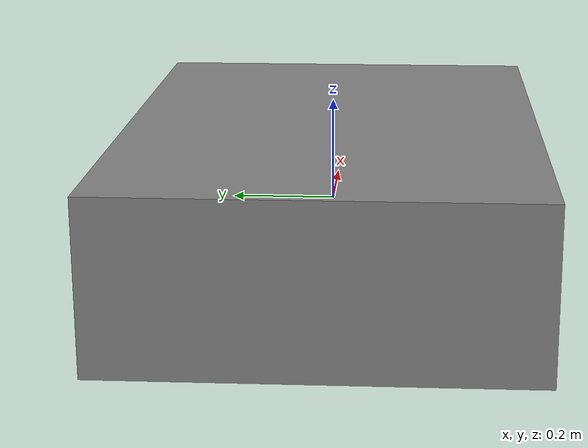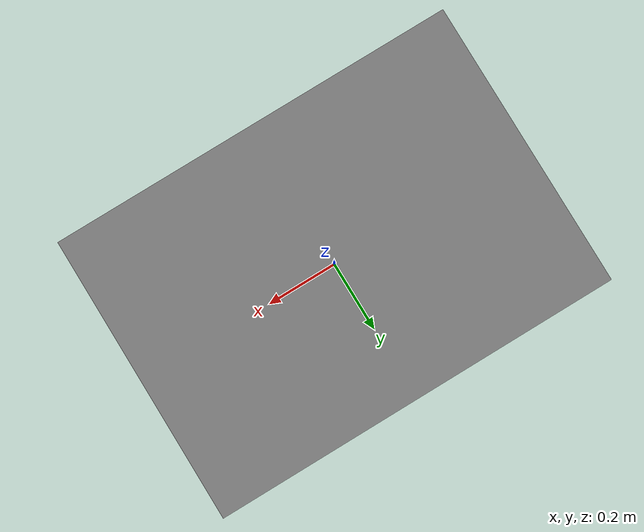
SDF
<?xml version="1.0" ?>
<sdf version="1.5">
  <model name="ammr">
    <pose>0 0 0 0 0 0</pose>

    <!-- base_footprint (작은 바닥판) -->
    <link name="base_footprint">
    </link>

    <!-- base_link (로봇 차체, 박스: 1.128×0.798×0.320, mass 20kg) -->
    <link name="base_link">
      <visual name="base_link_visual">
        <geometry>
          <box>
            <size>1.128 0.798 0.320</size>
          </box>
        </geometry>
        <material>
          <ambient>0.5 0.5 0.5 1</ambient>
          <diffuse>0.5 0.5 0.5 1</diffuse>
        </material>
      </visual>
      <collision name="base_link_collision">
        <geometry>
          <box>
            <size>1.128 0.798 0.320</size>
          </box>
        </geometry>
      </collision>
      <inertial>
        <mass>20.0</mass>
        <pose>0 0 0 0 0 0</pose>
        <inertia>
          <ixx>1.23</ixx>
          <iyy>2.29</iyy>
          <izz>3.18</izz>
          <ixy>0</ixy>
          <ixz>0</ixz>
          <iyz>0</iyz>
        </inertia>
      </inertial>
    </link>
    <joint name="base_footprint_to_base_link" type="fixed">
      <parent>base_footprint</parent>
      <child>base_link</child>
      <!-- Z 오프셋 0.09 -->
      <pose>0 0 0.09 0 0 0</pose>
    </joint>

    <!-- 라이다 1: scan_front -->
    <link name="scan_front">
      <visual name="scan_front_visual">
        <geometry>
          <cylinder>
            <radius>0.05</radius>
            <length>0.1</length>
          </cylinder>
        </geometry>
        <material>
          <ambient>1 0 0 1</ambient>
          <diffuse>1 0 0 1</diffuse>
        </material>
      </visual>
      <collision name="scan_front_collision">
        <geometry>
          <cylinder>
            <radius>0.05</radius>
            <length>0.1</length>
          </cylinder>
        </geometry>
      </collision>
      <inertial>
        <mass>1.0</mass>
        <pose>0 0 0 0 0 0</pose>
        <inertia>
          <ixx>0.00146</ixx>
          <iyy>0.00146</iyy>
          <izz>0.00125</izz>
          <ixy>0</ixy>
          <ixz>0</ixz>
          <iyz>0</iyz>
        </inertia>
      </inertial>
      <sensor name="picoScan150Core-1" type="ray">
        <pose>0 0 0 0 0 0</pose>
        <update_rate>20</update_rate>
        <ray>
          <scan>
            <horizontal>
              <samples>360</samples>
              <resolution>1</resolution>
              <min_angle>-1.5708</min_angle>
              <max_angle>1.5708</max_angle>
            </horizontal>
          </scan>
          <range>
            <min>0.1</min>
            <max>30</max>
            <resolution>0.01</resolution>
          </range>
          <noise>
            <type>gaussian</type>
            <mean>0.0</mean>
            <stddev>0.01</stddev>
          </noise>
        </ray>
      </sensor>
    </link>
    <!-- 수정된 scan_front 위치: base_link의 앞쪽 표면으로 돌출 -->
    <joint name="base_link_to_scan_front" type="fixed">
      <parent>base_link</parent>
      <child>scan_front</child>
      <pose>0.7 -0.315 0.216 3.14159 0 -0.7854</pose>
    </joint>

    <!-- 라이다 2: scan_rear -->
    <link name="scan_rear">
      <visual name="scan_rear_visual">
        <geometry>
          <cylinder>
            <radius>0.05</radius>
            <length>0.1</length>
          </cylinder>
        </geometry>
        <material>
          <ambient>1 0 0 1</ambient>
          <diffuse>1 0 0 1</diffuse>
        </material>
      </visual>
      <collision name="scan_rear_collision">
        <geometry>
          <cylinder>
            <radius>0.05</radius>
            <length>0.1</length>
          </cylinder>
        </geometry>
      </collision>
      <inertial>
        <mass>1.0</mass>
        <pose>0 0 0 0 0 0</pose>
        <inertia>
          <ixx>0.00146</ixx>
          <iyy>0.00146</iyy>
          <izz>0.00125</izz>
          <ixy>0</ixy>
          <ixz>0</ixz>
          <iyz>0</iyz>
        </inertia>
      </inertial>
      <sensor name="picoScan150Core-1" type="ray">
        <pose>0 0 0 0 0 0</pose>
        <update_rate>20</update_rate>
        <ray>
          <scan>
            <horizontal>
              <samples>360</samples>
              <resolution>1</resolution>
              <min_angle>-1.5708</min_angle>
              <max_angle>1.5708</max_angle>
            </horizontal>
          </scan>
          <range>
            <min>0.1</min>
            <max>30</max>
            <resolution>0.01</resolution>
          </range>
          <noise>
            <type>gaussian</type>
            <mean>0.0</mean>
            <stddev>0.01</stddev>
          </noise>
        </ray>
      </sensor>
    </link>
    <!-- 수정된 scan_rear 위치: base_link의 뒷쪽 표면으로 돌출 -->
    <joint name="base_link_to_scan_rear" type="fixed">
      <parent>base_link</parent>
      <child>scan_rear</child>
      <pose>-0.7 0.315 0.216 3.14159 0 2.35619</pose>
    </joint>

    <!-- 카메라 Front: camera_front -->
    <link name="camera_front">
      <visual name="camera_front_visual">
        <geometry>
          <box>
            <size>0.1 0.1 0.1</size>
          </box>
        </geometry>
        <material>
          <ambient>0 1 0 1</ambient>
          <diffuse>0 1 0 1</diffuse>
        </material>
      </visual>
      <collision name="camera_front_collision">
        <geometry>
          <box>
            <size>0.1 0.1 0.1</size>
          </box>
        </geometry>
      </collision>
      <inertial>
        <mass>0.5</mass>
        <pose>0 0 0 0 0 0</pose>
        <inertia>
          <ixx>0.00083</ixx>
          <iyy>0.00083</iyy>
          <izz>0.00083</izz>
          <ixy>0</ixy>
          <ixz>0</ixz>
          <iyz>0</iyz>
        </inertia>
      </inertial>
      <sensor name="zed_x_mini" type="camera">
        <pose>0 0 0 0 0 0</pose>
        <update_rate>30</update_rate>
        <camera>
          <horizontal_fov>1.047</horizontal_fov>
          <image>
            <width>1280</width>
            <height>720</height>
            <format>R8G8B8</format>
          </image>
          <clip>
            <near>0.1</near>
            <far>100</far>
          </clip>
        </camera>
      </sensor>
    </link>
    <!-- 수정된 camera_front 위치: base_link의 앞쪽 -->
    <joint name="base_link_to_camera_front" type="fixed">
      <parent>base_link</parent>
      <child>camera_front</child>
      <pose>0.7 0 0.277 0 0 0</pose>
    </joint>

    <!-- 카메라 Rear: camera_rear -->
    <link name="camera_rear">
      <visual name="camera_rear_visual">
        <geometry>
          <box>
            <size>0.1 0.1 0.1</size>
          </box>
        </geometry>
        <material>
          <ambient>0 1 0 1</ambient>
          <diffuse>0 1 0 1</diffuse>
        </material>
      </visual>
      <collision name="camera_rear_collision">
        <geometry>
          <box>
            <size>0.1 0.1 0.1</size>
          </box>
        </geometry>
      </collision>
      <inertial>
        <mass>0.5</mass>
        <pose>0 0 0 0 0 0</pose>
        <inertia>
          <ixx>0.00083</ixx>
          <iyy>0.00083</iyy>
          <izz>0.00083</izz>
          <ixy>0</ixy>
          <ixz>0</ixz>
          <iyz>0</iyz>
        </inertia>
      </inertial>
      <sensor name="zed_x_mini" type="camera">
        <pose>0 0 0 0 0 0</pose>
        <update_rate>30</update_rate>
        <camera>
          <horizontal_fov>1.047</horizontal_fov>
          <image>
            <width>1280</width>
            <height>720</height>
            <format>R8G8B8</format>
          </image>
          <clip>
            <near>0.1</near>
            <far>100</far>
          </clip>
        </camera>
      </sensor>
    </link>
    <!-- 수정된 camera_rear 위치: base_link의 뒷쪽 -->
    <joint name="base_link_to_camera_rear" type="fixed">
      <parent>base_link</parent>
      <child>camera_rear</child>
      <pose>-0.7 0 0.277 0 0 3.14159</pose>
    </joint>

    <!-- 카메라 Right: camera_right -->
    <link name="camera_right">
      <visual name="camera_right_visual">
        <geometry>
          <box>
            <size>0.1 0.1 0.1</size>
          </box>
        </geometry>
        <material>
          <ambient>0 1 0 1</ambient>
          <diffuse>0 1 0 1</diffuse>
        </material>
      </visual>
      <collision name="camera_right_collision">
        <geometry>
          <box>
            <size>0.1 0.1 0.1</size>
          </box>
        </geometry>
      </collision>
      <inertial>
        <mass>0.5</mass>
        <pose>0 0 0 0 0 0</pose>
        <inertia>
          <ixx>0.00083</ixx>
          <iyy>0.00083</iyy>
          <izz>0.00083</izz>
          <ixy>0</ixy>
          <ixz>0</ixz>
          <iyz>0</iyz>
        </inertia>
      </inertial>
      <sensor name="zed_x_mini" type="camera">
        <pose>0 0 0 0 0 0</pose>
        <update_rate>30</update_rate>
        <camera>
          <horizontal_fov>1.047</horizontal_fov>
          <image>
            <width>1280</width>
            <height>720</height>
            <format>R8G8B8</format>
          </image>
          <clip>
            <near>0.1</near>
            <far>100</far>
          </clip>
        </camera>
      </sensor>
    </link>
    <!-- 수정된 camera_right 위치: base_link의 오른쪽 -->
    <joint name="base_link_to_camera_right" type="fixed">
      <parent>base_link</parent>
      <child>camera_right</child>
      <pose>0 -0.5 0.277 0 0 -1.5708</pose>
    </joint>

    <!-- 카메라 Left: camera_left -->
    <link name="camera_left">
      <visual name="camera_left_visual">
        <geometry>
          <box>
            <size>0.1 0.1 0.1</size>
          </box>
        </geometry>
        <material>
          <ambient>0 1 0 1</ambient>
          <diffuse>0 1 0 1</diffuse>
        </material>
      </visual>
      <collision name="camera_left_collision">
        <geometry>
          <box>
            <size>0.1 0.1 0.1</size>
          </box>
        </geometry>
      </collision>
      <inertial>
        <mass>0.5</mass>
        <pose>0 0 0 0 0 0</pose>
        <inertia>
          <ixx>0.00083</ixx>
          <iyy>0.00083</iyy>
          <izz>0.00083</izz>
          <ixy>0</ixy>
          <ixz>0</ixz>
          <iyz>0</iyz>
        </inertia>
      </inertial>
      <sensor name="zed_x_mini" type="camera">
        <pose>0 0 0 0 0 0</pose>
        <update_rate>30</update_rate>
        <camera>
          <horizontal_fov>1.047</horizontal_fov>
          <image>
            <width>1280</width>
            <height>720</height>
            <format>R8G8B8</format>
          </image>
          <clip>
            <near>0.1</near>
            <far>100</far>
          </clip>
        </camera>
      </sensor>
    </link>
    <!-- 수정된 camera_left 위치: base_link의 왼쪽 -->
    <joint name="base_link_to_camera_left" type="fixed">
      <parent>base_link</parent>
      <child>camera_left</child>
      <pose>0 0.5 0.277 0 0 1.5708</pose>
    </joint>

    <!-- 휠 1: wheel_left (원통: radius 0.09, length 0.05, mass 1kg) -->
    <link name="wheel_left">
      <visual name="wheel_left_visual">
        <geometry>
          <cylinder>
            <radius>0.09</radius>
            <length>0.05</length>
          </cylinder>
        </geometry>
        <material>
          <ambient>0 0 0 1</ambient>
          <diffuse>0 0 0 1</diffuse>
        </material>
      </visual>
      <collision name="wheel_left_collision">
        <geometry>
          <cylinder>
            <radius>0.09</radius>
            <length>0.05</length>
          </cylinder>
        </geometry>
      </collision>
      <inertial>
        <mass>1.0</mass>
        <pose>0 0 0 0 0 0</pose>
        <inertia>
          <ixx>0.00223</ixx>
          <iyy>0.00223</iyy>
          <izz>0.00405</izz>
          <ixy>0</ixy>
          <ixz>0</ixz>
          <iyz>0</iyz>
        </inertia>
      </inertial>
    </link>
    <!-- 수정된 wheel_left 위치: base_link의 측면, 아래쪽 (z = -0.2) -->
    <joint name="base_link_to_wheel_left" type="revolute">
      <parent>base_link</parent>
      <child>wheel_left</child>
      <pose>0 0.33 -0.2 -1.57 0 0</pose>
      <axis>
        <xyz>0 0 1</xyz>
        <limit>
          <lower>-3.14159</lower>
          <upper>3.14159</upper>
        </limit>
      </axis>
    </joint>

    <!-- 휠 2: wheel_right (원통: radius 0.09, length 0.05, mass 1kg) -->
    <link name="wheel_right">
      <visual name="wheel_right_visual">
        <geometry>
          <cylinder>
            <radius>0.09</radius>
            <length>0.05</length>
          </cylinder>
        </geometry>
        <material>
          <ambient>0 0 0 1</ambient>
          <diffuse>0 0 0 1</diffuse>
        </material>
      </visual>
      <collision name="wheel_right_collision">
        <geometry>
          <cylinder>
            <radius>0.09</radius>
            <length>0.05</length>
          </cylinder>
        </geometry>
      </collision>
      <inertial>
        <mass>1.0</mass>
        <pose>0 0 0 0 0 0</pose>
        <inertia>
          <ixx>0.00223</ixx>
          <iyy>0.00223</iyy>
          <izz>0.00405</izz>
          <ixy>0</ixy>
          <ixz>0</ixz>
          <iyz>0</iyz>
        </inertia>
      </inertial>
    </link>
    <!-- 수정된 wheel_right 위치: base_link의 반대측, 아래쪽 -->
    <joint name="base_link_to_wheel_right" type="revolute">
      <parent>base_link</parent>
      <child>wheel_right</child>
      <pose>0 -0.33 -0.2 -1.57 0 0</pose>
      <axis>
        <xyz>0 0 1</xyz>
        <limit>
          <lower>-3.14159</lower>
          <upper>3.14159</upper>
        </limit>
      </axis>
    </joint>

  </model>
</sdf>
